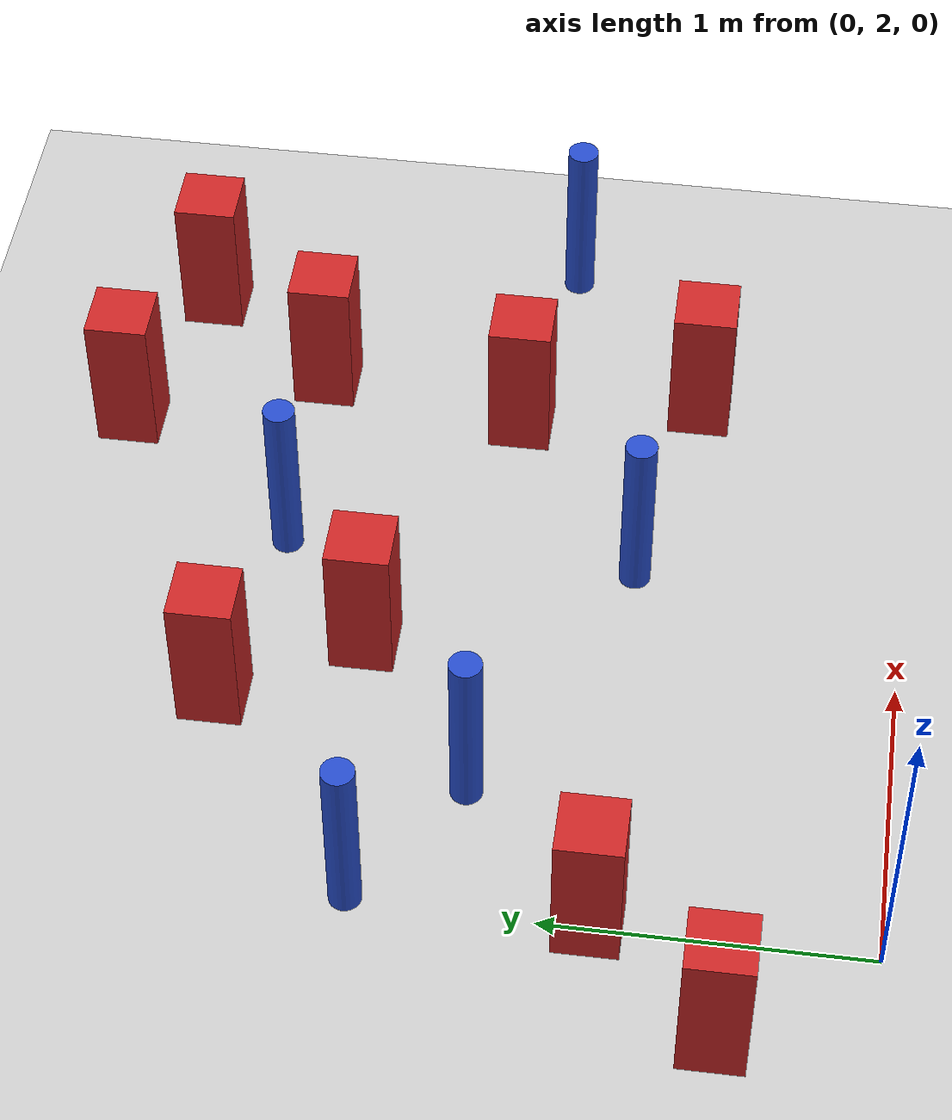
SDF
<sdf version="1.6">
 <world name="default">
  <model name="ground_plane">
   <static>1</static>
   <link name="link">
    <collision name="collision">
     <geometry><plane><normal>0 0 1</normal><size>100 100</size></plane></geometry>
     <surface><friction><ode><mu>100</mu><mu2>50</mu2></ode></friction></surface>
    </collision>
    <visual name="visual">
     <cast_shadows>0</cast_shadows>
     <geometry><plane><normal>0 0 1</normal><size>100 100</size></plane></geometry>
     <material>
      <ambient>1.0 1.0 1.0 1.0</ambient>
      <diffuse>0.8 0.8 0.8 1.0</diffuse>
      <specular>0.01 0.01 0.01 1.000000</specular>
     </material>
    </visual>
   </link>
  </model>
  <model name="square_post_obstacle2">
   <static>true</static>
   <pose>1.98064423771 3.28189115455 1.91545236811e-07 -7.35059704564e-06 1.12565212e-07 2.39332434364e-05</pose>
   <link name="link">
    <pose>0 0 0.25 0 -0 0</pose>
    <inertial>
     <mass>100</mass>
     <inertia>
      <ixx>0.166667</ixx>
      <ixy>0</ixy>
      <ixz>0</ixz>
      <iyy>0.166667</iyy>
      <iyz>0</iyz>
      <izz>0.166667</izz>
     </inertia>
    </inertial>
    <collision name="collision"><geometry><box><size>.2 .2 .5</size></box></geometry></collision>
    <visual name="visual">
     <geometry><box><size>.2 .2 .5</size></box></geometry>
     <material>
      <script><name>Gazebo/Red</name><uri>file://media/materials/scripts/gazebo.material</uri></script>
     </material>
    </visual>
   </link>
  </model>
  <model name="pole_obstacle21">
   <static>true</static>
   <pose>0.0212298474387 3.55706874163 7.38925637345e-09 -8.471706928e-08 1.24976765089e-08 -1.74513093014e-07</pose>
   <link name="link">
    <pose>0 0 0.3 0 -0 0</pose>
    <inertial>
     <mass>1</mass>
     <inertia><ixx>0.145833</ixx><ixy>0</ixy><ixz>0</ixz><iyy>0.145833</iyy><iyz>0</iyz><izz>0.125</izz></inertia>
    </inertial>
    <collision name="collision">
     <geometry><cylinder><radius>0.05</radius><length>.6</length></cylinder></geometry>
    </collision>
    <visual name="visual">
     <geometry><cylinder><radius>0.05</radius><length>.6</length></cylinder></geometry>
     <material>
      <script><name>Gazebo/Blue</name><uri>file://media/materials/scripts/gazebo.material</uri></script>
     </material>
    </visual>
   </link>
  </model>
  <model name="square_post_obstacle46">
   <static>true</static>
   <pose>0.974590527266 3.6486881432 1.91545236811e-07 -7.35059704564e-06 1.12565212e-07 2.39332434364e-05</pose>
   <link name="link">
    <pose>0 0 0.25 0 -0 0</pose>
    <inertial>
     <mass>100</mass>
     <inertia>
      <ixx>0.166667</ixx>
      <ixy>0</ixy>
      <ixz>0</ixz>
      <iyy>0.166667</iyy>
      <iyz>0</iyz>
      <izz>0.166667</izz>
     </inertia>
    </inertial>
    <collision name="collision"><geometry><box><size>.2 .2 .5</size></box></geometry></collision>
    <visual name="visual">
     <geometry><box><size>.2 .2 .5</size></box></geometry>
     <material>
      <script><name>Gazebo/Red</name><uri>file://media/materials/scripts/gazebo.material</uri></script>
     </material>
    </visual>
   </link>
  </model>
  <model name="square_post_obstacle57">
   <static>true</static>
   <pose>1.84150976464 4.57047507528 1.91545236811e-07 -7.35059704564e-06 1.12565212e-07 2.39332434364e-05</pose>
   <link name="link">
    <pose>0 0 0.25 0 -0 0</pose>
    <inertial>
     <mass>100</mass>
     <inertia>
      <ixx>0.166667</ixx>
      <ixy>0</ixy>
      <ixz>0</ixz>
      <iyy>0.166667</iyy>
      <iyz>0</iyz>
      <izz>0.166667</izz>
     </inertia>
    </inertial>
    <collision name="collision"><geometry><box><size>.2 .2 .5</size></box></geometry></collision>
    <visual name="visual">
     <geometry><box><size>.2 .2 .5</size></box></geometry>
     <material>
      <script><name>Gazebo/Red</name><uri>file://media/materials/scripts/gazebo.material</uri></script>
     </material>
    </visual>
   </link>
  </model>
  <model name="pole_obstacle117">
   <static>true</static>
   <pose>1.36367780519 2.84333499804 7.38925637345e-09 -8.47170692799e-08 1.24976765053e-08 -1.74513093017e-07</pose>
   <link name="link">
    <pose>0 0 0.3 0 -0 0</pose>
    <inertial>
     <mass>1</mass>
     <inertia><ixx>0.145833</ixx><ixy>0</ixy><ixz>0</ixz><iyy>0.145833</iyy><iyz>0</iyz><izz>0.125</izz></inertia>
    </inertial>
    <collision name="collision">
     <geometry><cylinder><radius>0.05</radius><length>.6</length></cylinder></geometry>
    </collision>
    <visual name="visual">
     <geometry><cylinder><radius>0.05</radius><length>.6</length></cylinder></geometry>
     <material>
      <script><name>Gazebo/Blue</name><uri>file://media/materials/scripts/gazebo.material</uri></script>
     </material>
    </visual>
   </link>
  </model>
  <model name="square_post_obstacle119">
   <static>true</static>
   <pose>0.706404112785 4.07528308677 1.91545236811e-07 -7.35059704564e-06 1.12565212e-07 2.39332434364e-05</pose>
   <link name="link">
    <pose>0 0 0.25 0 -0 0</pose>
    <inertial>
     <mass>100</mass>
     <inertia>
      <ixx>0.166667</ixx>
      <ixy>0</ixy>
      <ixz>0</ixz>
      <iyy>0.166667</iyy>
      <iyz>0</iyz>
      <izz>0.166667</izz>
     </inertia>
    </inertial>
    <collision name="collision"><geometry><box><size>.2 .2 .5</size></box></geometry></collision>
    <visual name="visual">
     <geometry><box><size>.2 .2 .5</size></box></geometry>
     <material>
      <script><name>Gazebo/Red</name><uri>file://media/materials/scripts/gazebo.material</uri></script>
     </material>
    </visual>
   </link>
  </model>
  <model name="pole_obstacle126">
   <static>true</static>
   <pose>1.36977288866 3.96485658691 7.38925637345e-09 -8.47170692799e-08 1.24976765077e-08 -1.74513093019e-07</pose>
   <link name="link">
    <pose>0 0 0.3 0 -0 0</pose>
    <inertial>
     <mass>1</mass>
     <inertia><ixx>0.145833</ixx><ixy>0</ixy><ixz>0</ixz><iyy>0.145833</iyy><iyz>0</iyz><izz>0.125</izz></inertia>
    </inertial>
    <collision name="collision">
     <geometry><cylinder><radius>0.05</radius><length>.6</length></cylinder></geometry>
    </collision>
    <visual name="visual">
     <geometry><cylinder><radius>0.05</radius><length>.6</length></cylinder></geometry>
     <material>
      <script><name>Gazebo/Blue</name><uri>file://media/materials/scripts/gazebo.material</uri></script>
     </material>
    </visual>
   </link>
  </model>
  <model name="pole_obstacle158">
   <static>true</static>
   <pose>0.4464275178 3.25878107382 7.38925637345e-09 -8.471706928e-08 1.24976765084e-08 -1.74513093017e-07</pose>
   <link name="link">
    <pose>0 0 0.3 0 -0 0</pose>
    <inertial>
     <mass>1</mass>
     <inertia><ixx>0.145833</ixx><ixy>0</ixy><ixz>0</ixz><iyy>0.145833</iyy><iyz>0</iyz><izz>0.125</izz></inertia>
    </inertial>
    <collision name="collision">
     <geometry><cylinder><radius>0.05</radius><length>.6</length></cylinder></geometry>
    </collision>
    <visual name="visual">
     <geometry><cylinder><radius>0.05</radius><length>.6</length></cylinder></geometry>
     <material>
      <script><name>Gazebo/Blue</name><uri>file://media/materials/scripts/gazebo.material</uri></script>
     </material>
    </visual>
   </link>
  </model>
  <model name="square_post_obstacle154">
   <static>true</static>
   <pose>2.09719562698 3.95430755695 1.91545236811e-07 -7.35059704564e-06 1.12565212e-07 2.39332434364e-05</pose>
   <link name="link">
    <pose>0 0 0.25 0 -0 0</pose>
    <inertial>
     <mass>100</mass>
     <inertia>
      <ixx>0.166667</ixx>
      <ixy>0</ixy>
      <ixz>0</ixz>
      <iyy>0.166667</iyy>
      <iyz>0</iyz>
      <izz>0.166667</izz>
     </inertia>
    </inertial>
    <collision name="collision"><geometry><box><size>.2 .2 .5</size></box></geometry></collision>
    <visual name="visual">
     <geometry><box><size>.2 .2 .5</size></box></geometry>
     <material>
      <script><name>Gazebo/Red</name><uri>file://media/materials/scripts/gazebo.material</uri></script>
     </material>
    </visual>
   </link>
  </model>
  <model name="square_post_obstacle155">
   <static>true</static>
   <pose>0.00804916464883 2.84520469133 1.91545236811e-07 -7.35059704564e-06 1.12565212e-07 2.39332434364e-05</pose>
   <link name="link">
    <pose>0 0 0.25 0 -0 0</pose>
    <inertial>
     <mass>100</mass>
     <inertia>
      <ixx>0.166667</ixx>
      <ixy>0</ixy>
      <ixz>0</ixz>
      <iyy>0.166667</iyy>
      <iyz>0</iyz>
      <izz>0.166667</izz>
     </inertia>
    </inertial>
    <collision name="collision"><geometry><box><size>.2 .2 .5</size></box></geometry></collision>
    <visual name="visual">
     <geometry><box><size>.2 .2 .5</size></box></geometry>
     <material>
      <script><name>Gazebo/Red</name><uri>file://media/materials/scripts/gazebo.material</uri></script>
     </material>
    </visual>
   </link>
  </model>
  <model name="square_post_obstacle160">
   <static>true</static>
   <pose>-0.330229896656 2.45808597967 1.91545236811e-07 -7.35059704564e-06 1.12565212e-07 2.39332434364e-05</pose>
   <link name="link">
    <pose>0 0 0.25 0 -0 0</pose>
    <inertial>
     <mass>100</mass>
     <inertia>
      <ixx>0.166667</ixx>
      <ixy>0</ixy>
      <ixz>0</ixz>
      <iyy>0.166667</iyy>
      <iyz>0</iyz>
      <izz>0.166667</izz>
     </inertia>
    </inertial>
    <collision name="collision"><geometry><box><size>.2 .2 .5</size></box></geometry></collision>
    <visual name="visual">
     <geometry><box><size>.2 .2 .5</size></box></geometry>
     <material>
      <script><name>Gazebo/Red</name><uri>file://media/materials/scripts/gazebo.material</uri></script>
     </material>
    </visual>
   </link>
  </model>
  <model name="square_post_obstacle164">
   <static>true</static>
   <pose>2.12077987471 2.69887344729 1.91545236811e-07 -7.35059704564e-06 1.12565212e-07 2.39332434364e-05</pose>
   <link name="link">
    <pose>0 0 0.25 0 -0 0</pose>
    <inertial>
     <mass>100</mass>
     <inertia>
      <ixx>0.166667</ixx>
      <ixy>0</ixy>
      <ixz>0</ixz>
      <iyy>0.166667</iyy>
      <iyz>0</iyz>
      <izz>0.166667</izz>
     </inertia>
    </inertial>
    <collision name="collision"><geometry><box><size>.2 .2 .5</size></box></geometry></collision>
    <visual name="visual">
     <geometry><box><size>.2 .2 .5</size></box></geometry>
     <material>
      <script><name>Gazebo/Red</name><uri>file://media/materials/scripts/gazebo.material</uri></script>
     </material>
    </visual>
   </link>
  </model>
  <model name="pole_obstacle187">
   <static>true</static>
   <pose>2.6936249242 3.16740386555 7.38925637345e-09 -8.47170692798e-08 1.24976764939e-08 -1.74513093025e-07</pose>
   <link name="link">
    <pose>0 0 0.3 0 -0 0</pose>
    <inertial>
     <mass>1</mass>
     <inertia><ixx>0.145833</ixx><ixy>0</ixy><ixz>0</ixz><iyy>0.145833</iyy><iyz>0</iyz><izz>0.125</izz></inertia>
    </inertial>
    <collision name="collision">
     <geometry><cylinder><radius>0.05</radius><length>.6</length></cylinder></geometry>
    </collision>
    <visual name="visual">
     <geometry><cylinder><radius>0.05</radius><length>.6</length></cylinder></geometry>
     <material>
      <script><name>Gazebo/Blue</name><uri>file://media/materials/scripts/gazebo.material</uri></script>
     </material>
    </visual>
   </link>
  </model>
  <model name="square_post_obstacle213">
   <static>true</static>
   <pose>2.42911379071 4.39527357582 1.91545236811e-07 -7.35059704564e-06 1.12565212e-07 2.39332434364e-05</pose>
   <link name="link">
    <pose>0 0 0.25 0 -0 0</pose>
    <inertial>
     <mass>100</mass>
     <inertia>
      <ixx>0.166667</ixx>
      <ixy>0</ixy>
      <ixz>0</ixz>
      <iyy>0.166667</iyy>
      <iyz>0</iyz>
      <izz>0.166667</izz>
     </inertia>
    </inertial>
    <collision name="collision"><geometry><box><size>.2 .2 .5</size></box></geometry></collision>
    <visual name="visual">
     <geometry><box><size>.2 .2 .5</size></box></geometry>
     <material>
      <script><name>Gazebo/Red</name><uri>file://media/materials/scripts/gazebo.material</uri></script>
     </material>
    </visual>
   </link>
  </model>
 </world>
</sdf>
